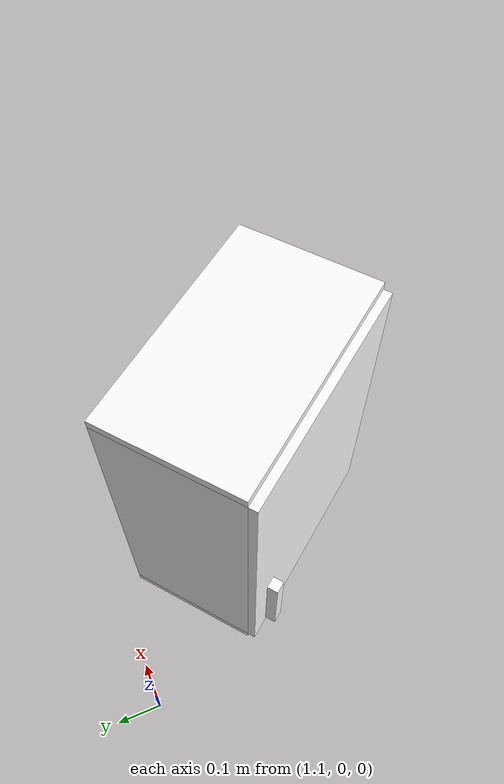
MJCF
<mujoco model="cabinet">
    <compiler angle="radian" eulerseq='zxy' />
    <option gravity = "0 0 0" />
    <option>
        <flag contact = "disable"/>
    </option>
    <statistic	extent="1.0" center="0.0 0.0 0.0"/>
    <visual>
        <map fogstart="3" fogend="5" force="0.1" znear=" 0.100000 " zfar=" 12.000000 "/>
    </visual>
    <size njmax="500" nconmax="100" />
    <actuator>
        <velocity joint="bottom_left_hinge" name="viva_revolution" kv='10'></velocity>
    </actuator>
    <asset>
        <texture builtin="flat" name="tabletex" height="32" width="32" rgb1="1 1 1" type="cube"></texture>
        <texture builtin="flat" name="objtex" height="32" width="32" rgb1="1 1 1" type="cube"></texture>
        <texture builtin="flat" name="handletex" height="32" width="32" rgb1="1 1 1" type="cube"></texture>
        <texture builtin="flat" name="wallpaper" height="32" width="32" rgb1="1 1 1" type="cube"></texture>
        <material name="geomTable" shininess="0.03" specular="0.75" texture="tabletex"></material>
        <material name="geomObj" shininess="0.03" specular="0.75" texture="objtex"></material>
        <material name="geomHandle" shininess="0.03" specular="0.75" texture="handletex"></material>
        <material name="bg" shininess="0.03" specular="0.75" texture="wallpaper"></material>
    </asset>
    <worldbody>
            <body name="cabinet_bottom" pos= " 1.392536 -0.332354 0.157867 "  quat= " -0.326438 0.000000 0.000000 0.945219" >
                <inertial pos="0 0 0" mass="1" diaginertia="1 1 1" />
                <geom size= " 0.140904 0.237796 0.016967 "  type="box" material="geomObj" name="b"/>
                <body name="cabinet_left" pos= " 0.000000 -0.220830 0.306231 " >
                    <inertial pos="0 0 0" mass="1" diaginertia="1 1 1" />
                    <geom size= " 0.140904 0.016967 0.306231 "  type="box" material="geomObj" name="c" />
                </body>
                <body name="cabinet_right" pos= " 0.000000 0.220830 0.306231 " >
                    <inertial pos="0 0 0" mass="1" diaginertia="1 1 1" />
                    <geom size= " 0.140904 0.016967 0.306231 "  type="box" material="geomObj" name="d" />
                </body>
                <body name="cabinet_top" pos= " 0.000000 0.000000 0.612462 " >
                    <inertial pos="0 0 0" mass="1" diaginertia="1 1 1" />
                    <geom size= " 0.140904 0.237796 0.016967 "  type="box" material="geomObj" name="e"/>
                </body>
                <body name="cabinet_back" pos= " -0.123938 0.000000 0.306231 "  >
                    <inertial pos="0 0 0" mass="1" diaginertia="1 1 1" />
                    <geom size= " 0.016967 0.237796 0.306231 "  type="box" material="geomObj" name="f" />
                </body>
                <body name="cabinet_left_hinge" pos= " 0.140904 0.237796 0.306231 " >
                    <inertial pos= " 0.000000 -0.237796 0.000000 "  mass="1" diaginertia="1 1 1" />
                    <joint name="bottom_left_hinge" type="hinge" pos="0 0 0" axis="0 0 1" limited="true" range= "0 2.3"  />
                    <geom size= " 0.016967 0.237796 0.306231 "  pos= " 0.000000 -0.237796 0.000000 "  type="box" material="geomObj" name="g"/>
                    <body name="handle_link" pos= " 0.035226 -0.430477 -0.154682 " >
                        <inertial pos="0 0 0" mass="1" diaginertia="1 1 1" />
                        <geom size= " 0.011439 0.012291 0.088562 "  type="box" material="geomHandle" name="h"/>
                    </body>
                </body>
            </body>
        <body name="external_camera_body_0" pos="0.0 0 0.00">
            <camera euler="-1.57 1.57 0.0" fovy=" 54.280851 " name="external_camera_0" pos="0.0 0 0"></camera>
            <inertial pos= " 0.00 0.0 0.000000 " mass="1" diaginertia="1 1 1" />
            <joint name="cam_j" pos="0.0 0 0" axis = "1 0 0" type="free" />
        </body>
    </worldbody>
</mujoco>
